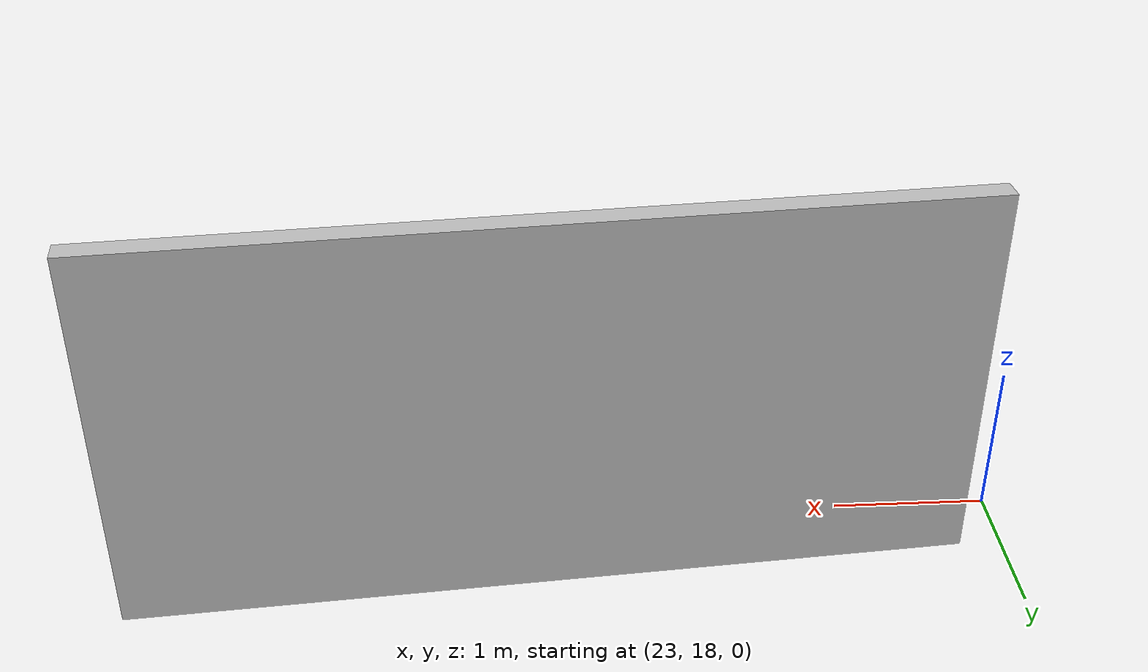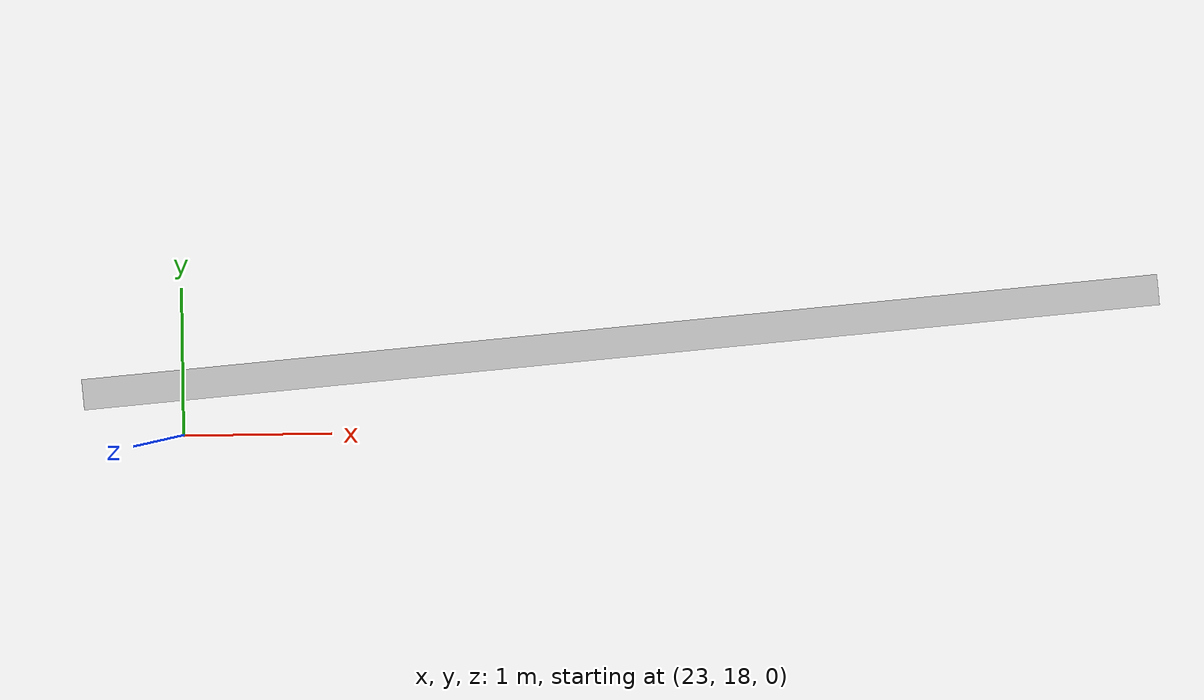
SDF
<?xml version="1.0" ?>
<sdf version="1.6">
  <model name="sps_4112">
    <pose frame="">0 0 0 0 -0 0</pose>
    <static>1</static>
    <self_collide>0</self_collide>
    <allow_auto_disable>0</allow_auto_disable>
    <link name="Wall64">
      <kinematic>0</kinematic>
      <gravity>1</gravity>
      <self_collide>0</self_collide>
      <collision name="collision">
        <geometry>
          <box>
            <size>31.7361 0.15 2.5</size>
          </box>
        </geometry>
        <pose frame="">0 0 0 0 -0 0</pose>
      </collision>
      <visual name="visual">
        <geometry>
          <box>
            <size>31.7361 0.15 2.5</size>
          </box>
        </geometry>
        <pose frame="">0 0 0 0 -0 0</pose>
        <cast_shadows>1</cast_shadows>
        <transparency>0.0</transparency>
      </visual>
      <pose frame="">44.7284 0.587272 1.25 0 0 -2.2738</pose>
    </link>
    <link name="Wall1379">
      <kinematic>0</kinematic>
      <gravity>1</gravity>
      <self_collide>0</self_collide>
      <collision name="collision">
        <geometry>
          <box>
            <size>5.303 0.15 2.5</size>
          </box>
        </geometry>
        <pose frame="">0 0 0 0 -0 0</pose>
      </collision>
      <visual name="visual">
        <geometry>
          <box>
            <size>5.303 0.15 2.5</size>
          </box>
        </geometry>
        <pose frame="">0 0 0 0 -0 0</pose>
        <cast_shadows>1</cast_shadows>
        <transparency>0.0</transparency>
      </visual>
      <pose frame="">25.9141 18.5812 1.25 0 -0 0.0823403</pose>
    </link>
  </model>
</sdf>
